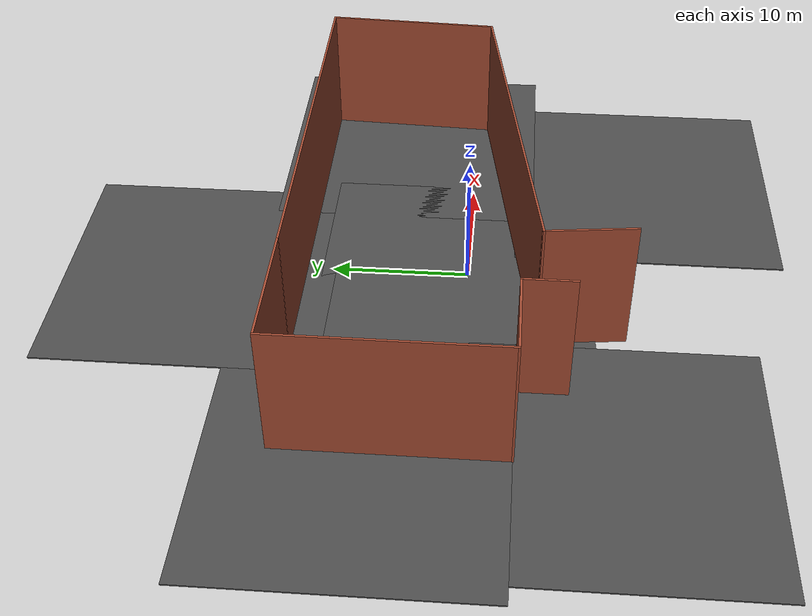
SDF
<sdf version="1.4">
 <world name="default">
  <light name="sun" type="directional">
   <pose>0 0 10 0 -0 0</pose>
   <diffuse>0.8 0.8 0.8 1</diffuse>
   <specular>0.2 0.2 0.2 1</specular>
   <attenuation>
    <range>1000</range>
    <constant>0.9</constant>
    <linear>0.01</linear>
    <quadratic>0.001</quadratic>
   </attenuation>
   <direction>-0.5 0.1 -0.9</direction>
  </light>
  <model name="ground_plane">
   <static>1</static>
   <link name="link">
    <collision name="collision">
     <geometry><plane><normal>0 0 1</normal><size>100 100</size></plane></geometry>
     <surface>
      <contact><collide_bitmask>65535</collide_bitmask></contact>
      <friction><ode><mu>100</mu><mu2>50</mu2></ode></friction>
     </surface>
    </collision>
    <visual name="visual">
     <cast_shadows>0</cast_shadows>
     <geometry><plane><normal>0 0 1</normal><size>100 100</size></plane></geometry>
     <material>
      <script><uri>file://media/materials/scripts/gazebo.material</uri><name>Gazebo/Grey</name></script>
     </material>
    </visual>
   </link>
  </model>
  <gravity>0 0 -9.8</gravity>
  <magnetic_field>6e-06 2.3e-05 -4.2e-05</magnetic_field>
  <atmosphere type="adiabatic"/>
  <physics name="default_physics" default="0" type="ode">
   <max_step_size>0.001</max_step_size>
   <real_time_factor>1</real_time_factor>
   <real_time_update_rate>1000</real_time_update_rate>
  </physics>
  <scene><ambient>0.4 0.4 0.4 1</ambient><background>0.7 0.7 0.7 1</background><shadows>1</shadows></scene>
  <spherical_coordinates>
   <surface_model>EARTH_WGS84</surface_model>
   <latitude_deg>0</latitude_deg>
   <longitude_deg>0</longitude_deg>
   <elevation>0</elevation>
   <heading_deg>0</heading_deg>
  </spherical_coordinates>
  <model name="asphalt_plane">
   <static>1</static>
   <link name="link">
    <collision name="collision"><geometry><box><size>20 20 0.1</size></box></geometry></collision>
    <visual name="visual">
     <cast_shadows>0</cast_shadows>
     <geometry><box><size>20 20 0.1</size></box></geometry>
     <material>
      <script>
       <uri>model://asphalt_plane/materials/scripts</uri>
       <uri>model://asphalt_plane/materials/textures</uri>
       <name>vrc/asphalt</name>
      </script>
     </material>
    </visual>
   </link>
   <pose>0.722586 0.758625 0 0 -0 0</pose>
  </model>
  <model name="hoijo_building_v0.1">
   <pose>1.06174 0.347192 0 0 -0 0</pose>
   <link name="Wall_0">
    <collision name="Wall_0_Collision">
     <geometry><box><size>3.66258 0.15 10</size></box></geometry>
     <pose>0 0 5 0 -0 0</pose>
    </collision>
    <visual name="Wall_0_Visual">
     <pose>0 0 5 0 -0 0</pose>
     <geometry><box><size>3.66258 0.15 10</size></box></geometry>
     <material>
      <script><uri>file://media/materials/scripts/gazebo.material</uri><name>Gazebo/Bricks</name></script>
      <ambient>1 1 1 1</ambient>
     </material>
     <meta><layer>0</layer></meta>
    </visual>
    <pose>-12.7517 -5.84969 0 0 -0 1.5708</pose>
   </link>
   <link name="Wall_1">
    <collision name="Wall_1_Collision">
     <geometry><box><size>6.25 0.15 10</size></box></geometry>
     <pose>0 0 5 0 -0 0</pose>
    </collision>
    <visual name="Wall_1_Visual">
     <pose>0 0 5 0 -0 0</pose>
     <geometry><box><size>6.25 0.15 10</size></box></geometry>
     <material>
      <script><uri>file://media/materials/scripts/gazebo.material</uri><name>Gazebo/Bricks</name></script>
      <ambient>1 1 1 1</ambient>
     </material>
     <meta><layer>0</layer></meta>
    </visual>
    <pose>-15.8017 -4.09319 0 0 -0 3.14159</pose>
   </link>
   <link name="Wall_2">
    <collision name="Wall_2_Collision">
     <geometry><box><size>15.837 0.15 10</size></box></geometry>
     <pose>0 0 5 0 -0 0</pose>
    </collision>
    <visual name="Wall_2_Visual">
     <pose>0 0 5 0 -0 0</pose>
     <geometry><box><size>15.837 0.15 10</size></box></geometry>
     <material>
      <script><uri>file://media/materials/scripts/gazebo.material</uri><name>Gazebo/Bricks</name></script>
      <ambient>1 1 1 1</ambient>
     </material>
     <meta><layer>0</layer></meta>
    </visual>
    <pose>-18.8517 3.75031 0 0 -0 1.5708</pose>
   </link>
   <link name="Wall_3">
    <collision name="Wall_3_Collision">
     <geometry><box><size>9 0.15 10</size></box></geometry>
     <pose>0 0 5 0 -0 0</pose>
    </collision>
    <visual name="Wall_3_Visual">
     <pose>0 0 5 0 -0 0</pose>
     <geometry><box><size>9 0.15 10</size></box></geometry>
     <material>
      <script><uri>file://media/materials/scripts/gazebo.material</uri><name>Gazebo/Bricks</name></script>
      <ambient>1 1 1 1</ambient>
     </material>
     <meta><layer>0</layer></meta>
    </visual>
    <pose>-14.4267 11.5938 0 0 -0 0</pose>
   </link>
   <link name="Wall_4">
    <collision name="Wall_4_Collision">
     <geometry><box><size>29 0.15 10</size></box></geometry>
     <pose>0 0 5 0 -0 0</pose>
    </collision>
    <visual name="Wall_4_Visual">
     <pose>0 0 5 0 -0 0</pose>
     <geometry><box><size>29 0.15 10</size></box></geometry>
     <material>
      <script><uri>file://media/materials/scripts/gazebo.material</uri><name>Gazebo/Bricks</name></script>
      <ambient>1 1 1 1</ambient>
     </material>
     <meta><layer>0</layer></meta>
    </visual>
    <pose>4.42326 11.6173 0 0 -0 0.001629</pose>
   </link>
   <link name="Wall_5">
    <collision name="Wall_5_Collision">
     <geometry><box><size>12.8916 0.15 10</size></box></geometry>
     <pose>0 0 5 0 -0 0</pose>
    </collision>
    <visual name="Wall_5_Visual">
     <pose>0 0 5 0 -0 0</pose>
     <geometry><box><size>12.8916 0.15 10</size></box></geometry>
     <material>
      <script><uri>file://media/materials/scripts/gazebo.material</uri><name>Gazebo/Bricks</name></script>
      <ambient>1 1 1 1</ambient>
     </material>
     <meta><layer>0</layer></meta>
    </visual>
    <pose>18.5459 5.27717 0 0 0 -1.61828</pose>
   </link>
   <link name="Wall_6">
    <collision name="Wall_6_Collision">
     <geometry><box><size>26.6809 0.15 10</size></box></geometry>
     <pose>0 0 5 0 -0 0</pose>
    </collision>
    <visual name="Wall_6_Visual">
     <pose>0 0 5 0 -0 0</pose>
     <geometry><box><size>26.6809 0.15 10</size></box></geometry>
     <material>
      <script><uri>file://media/materials/scripts/gazebo.material</uri><name>Gazebo/Bricks</name></script>
      <ambient>1 1 1 1</ambient>
     </material>
     <meta><layer>0</layer></meta>
    </visual>
    <pose>5.15562 -3.2966 0 0 0 -2.97776</pose>
   </link>
   <link name="Wall_7">
    <collision name="Wall_7_Collision">
     <geometry><box><size>6.41173 0.15 10</size></box></geometry>
     <pose>0 0 5 0 -0 0</pose>
    </collision>
    <visual name="Wall_7_Visual">
     <pose>0 0 5 0 -0 0</pose>
     <geometry><box><size>6.41173 0.15 10</size></box></geometry>
     <material>
      <script><uri>file://media/materials/scripts/gazebo.material</uri><name>Gazebo/Bricks</name></script>
      <ambient>1 1 1 1</ambient>
     </material>
     <meta><layer>0</layer></meta>
    </visual>
    <pose>-7.58329 -8.52503 0 0 0 -1.45912</pose>
   </link>
   <static>1</static>
  </model>
  <model name="asphalt_plane_0">
   <static>1</static>
   <link name="link">
    <collision name="collision"><geometry><box><size>20 20 0.1</size></box></geometry></collision>
    <visual name="visual">
     <cast_shadows>0</cast_shadows>
     <geometry><box><size>20 20 0.1</size></box></geometry>
     <material>
      <script>
       <uri>model://asphalt_plane/materials/scripts</uri>
       <uri>model://asphalt_plane/materials/textures</uri>
       <name>vrc/asphalt</name>
      </script>
     </material>
    </visual>
   </link>
   <pose>-18.4925 6.26565 0 0 -0 0</pose>
  </model>
  <model name="asphalt_plane_1">
   <static>1</static>
   <link name="link">
    <collision name="collision"><geometry><box><size>20 20 0.1</size></box></geometry></collision>
    <visual name="visual">
     <cast_shadows>0</cast_shadows>
     <geometry><box><size>20 20 0.1</size></box></geometry>
     <material>
      <script>
       <uri>model://asphalt_plane/materials/scripts</uri>
       <uri>model://asphalt_plane/materials/textures</uri>
       <name>vrc/asphalt</name>
      </script>
     </material>
    </visual>
   </link>
   <pose>-17.1978 -10.4592 0 0 -0 0</pose>
  </model>
  <model name="asphalt_plane_2">
   <static>1</static>
   <link name="link">
    <collision name="collision"><geometry><box><size>20 20 0.1</size></box></geometry></collision>
    <visual name="visual">
     <cast_shadows>0</cast_shadows>
     <geometry><box><size>20 20 0.1</size></box></geometry>
     <material>
      <script>
       <uri>model://asphalt_plane/materials/scripts</uri>
       <uri>model://asphalt_plane/materials/textures</uri>
       <name>vrc/asphalt</name>
      </script>
     </material>
    </visual>
   </link>
   <pose>-0.897072 19.7396 0 0 -0 0</pose>
  </model>
  <model name="asphalt_plane_3">
   <static>1</static>
   <link name="link">
    <collision name="collision"><geometry><box><size>20 20 0.1</size></box></geometry></collision>
    <visual name="visual">
     <cast_shadows>0</cast_shadows>
     <geometry><box><size>20 20 0.1</size></box></geometry>
     <material>
      <script>
       <uri>model://asphalt_plane/materials/scripts</uri>
       <uri>model://asphalt_plane/materials/textures</uri>
       <name>vrc/asphalt</name>
      </script>
     </material>
    </visual>
   </link>
   <pose>16.6696 5.22759 0 0 -0 0</pose>
  </model>
  <model name="asphalt_plane_4">
   <static>1</static>
   <link name="link">
    <collision name="collision"><geometry><box><size>20 20 0.1</size></box></geometry></collision>
    <visual name="visual">
     <cast_shadows>0</cast_shadows>
     <geometry><box><size>20 20 0.1</size></box></geometry>
     <material>
      <script>
       <uri>model://asphalt_plane/materials/scripts</uri>
       <uri>model://asphalt_plane/materials/textures</uri>
       <name>vrc/asphalt</name>
      </script>
     </material>
    </visual>
   </link>
   <pose>12.3273 -13.3957 0 0 -0 0</pose>
  </model>
  <physics name="default_physics" default="0" type="ode">
   <gravity>0 0 -9.8066</gravity>
   <ode>
    <solver>
     <type>quick</type>
     <iters>10</iters>
     <sor>1.0</sor>
     <use_dynamic_moi_rescaling>0</use_dynamic_moi_rescaling>
    </solver>
    <constraints>
     <cfm>0</cfm>
     <erp>0.2</erp>
     <contact_max_correcting_vel>100</contact_max_correcting_vel>
     <contact_surface_layer>0.001</contact_surface_layer>
    </constraints>
   </ode>
   <max_step_size>0.004</max_step_size>
   <real_time_factor>1</real_time_factor>
   <real_time_update_rate>250</real_time_update_rate>
   <magnetic_field>6e-06 2.3e-05 -4.2e-05</magnetic_field>
  </physics>
 </world>
</sdf>
